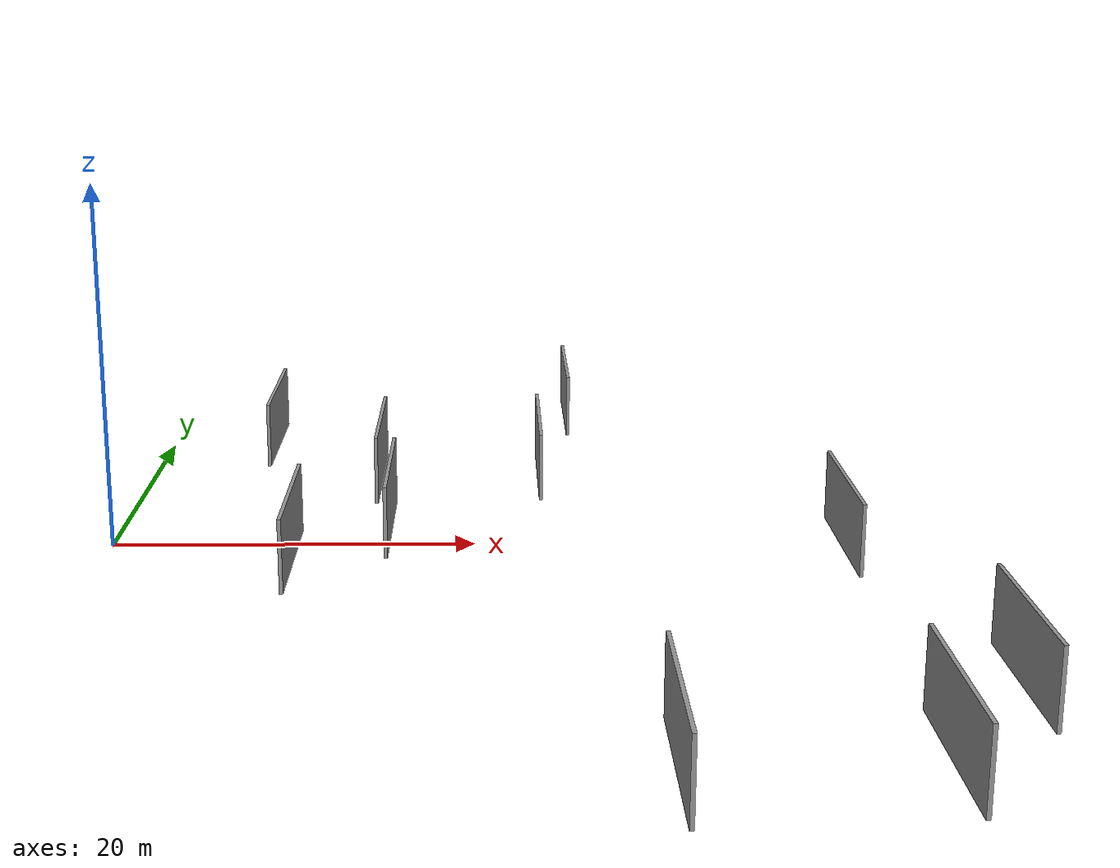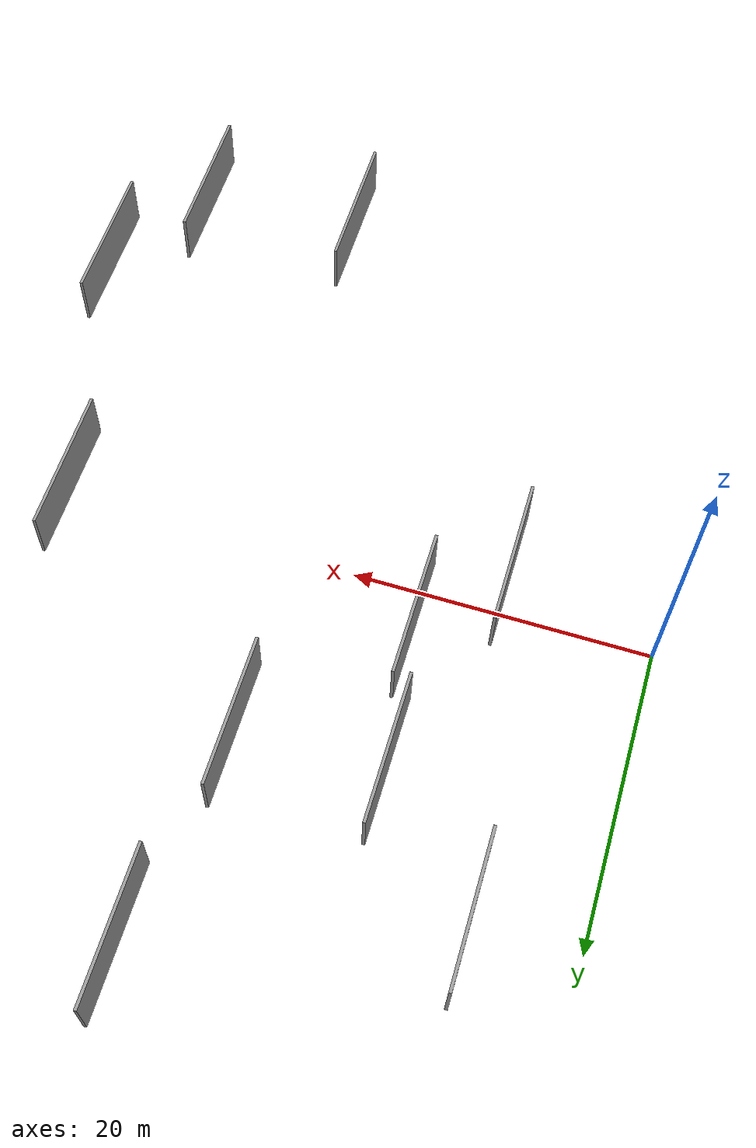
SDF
<sdf version="1.6">
 <world name="default">
  <scene>
   <sky><clouds><speed>12</speed></clouds></sky>
   <ambient>0.4 0.4 0.4 1</ambient>
   <background>0.7 0.7 0.7 1</background>
   <shadows>1</shadows>
  </scene>
  <gravity>0 0 -9.8066</gravity>
  <magnetic_field>6e-06 2.3e-05 -4.2e-05</magnetic_field>
  <physics default="0" name="default_physics" type="ode">
   <ode>
    <solver>
     <type>quick</type>
     <iters>10</iters>
     <sor>1.0</sor>
     <use_dynamic_moi_rescaling>0</use_dynamic_moi_rescaling>
    </solver>
    <constraints>
     <cfm>0</cfm>
     <erp>0.2</erp>
     <contact_max_correcting_vel>100</contact_max_correcting_vel>
     <contact_surface_layer>0.001</contact_surface_layer>
    </constraints>
   </ode>
   <max_step_size>0.004</max_step_size>
   <real_time_factor>1</real_time_factor>
   <real_time_update_rate>250</real_time_update_rate>
  </physics>
  <light name="sun" type="directional">
   <pose>0 0 10 0 0 0</pose>
   <diffuse>0.8 0.8 0.8 1</diffuse>
   <specular>0.2 0.2 0.2 1</specular>
   <attenuation>
    <range>1000</range>
    <constant>0.9</constant>
    <linear>0.01</linear>
    <quadratic>0.001</quadratic>
   </attenuation>
   <direction>-0.5 0.1 -0.9</direction>
  </light>
  <model name="grey_wall_1">
   <static>1</static>
   <pose>39.7344 -27.1558 0.0 0.000000 0.000000 1.570796</pose>
   <link name="link">
    <pose>0 0 2.00 0 0 0</pose>
    <collision name="collision"><geometry><box><size>10.00 0.2 4.00</size></box></geometry></collision>
    <visual name="visual">
     <cast_shadows>0</cast_shadows>
     <geometry><box><size>10.00 0.2 4.00</size></box></geometry>
     <material>
      <script>
       <uri>model://grey_wall/materials/scripts</uri>
       <uri>model://grey_wall/materials/textures</uri>
       <name>vrc/grey_wall</name>
      </script>
     </material>
    </visual>
   </link>
  </model>
  <model name="grey_wall_2">
   <static>1</static>
   <pose>14.1139 12.3904 0.0 0.000000 0.000000 1.570796</pose>
   <link name="link">
    <pose>0 0 2.00 0 0 0</pose>
    <collision name="collision"><geometry><box><size>10.00 0.2 4.00</size></box></geometry></collision>
    <visual name="visual">
     <cast_shadows>0</cast_shadows>
     <geometry><box><size>10.00 0.2 4.00</size></box></geometry>
     <material>
      <script>
       <uri>model://grey_wall/materials/scripts</uri>
       <uri>model://grey_wall/materials/textures</uri>
       <name>vrc/grey_wall</name>
      </script>
     </material>
    </visual>
   </link>
  </model>
  <model name="grey_wall_3">
   <static>1</static>
   <pose>6.8057 20.2723 0.0 0.000000 0.000000 1.570796</pose>
   <link name="link">
    <pose>0 0 2.00 0 0 0</pose>
    <collision name="collision"><geometry><box><size>10.00 0.2 4.00</size></box></geometry></collision>
    <visual name="visual">
     <cast_shadows>0</cast_shadows>
     <geometry><box><size>10.00 0.2 4.00</size></box></geometry>
     <material>
      <script>
       <uri>model://grey_wall/materials/scripts</uri>
       <uri>model://grey_wall/materials/textures</uri>
       <name>vrc/grey_wall</name>
      </script>
     </material>
    </visual>
   </link>
  </model>
  <model name="grey_wall_4">
   <static>1</static>
   <pose>10.1663 -2.7122 0.0 0.000000 0.000000 1.570796</pose>
   <link name="link">
    <pose>0 0 2.00 0 0 0</pose>
    <collision name="collision"><geometry><box><size>10.00 0.2 4.00</size></box></geometry></collision>
    <visual name="visual">
     <cast_shadows>0</cast_shadows>
     <geometry><box><size>10.00 0.2 4.00</size></box></geometry>
     <material>
      <script>
       <uri>model://grey_wall/materials/scripts</uri>
       <uri>model://grey_wall/materials/textures</uri>
       <name>vrc/grey_wall</name>
      </script>
     </material>
    </visual>
   </link>
  </model>
  <model name="grey_wall_5">
   <static>1</static>
   <pose>15.2024 2.6732 0.0 0.000000 0.000000 1.570796</pose>
   <link name="link">
    <pose>0 0 2.00 0 0 0</pose>
    <collision name="collision"><geometry><box><size>10.00 0.2 4.00</size></box></geometry></collision>
    <visual name="visual">
     <cast_shadows>0</cast_shadows>
     <geometry><box><size>10.00 0.2 4.00</size></box></geometry>
     <material>
      <script>
       <uri>model://grey_wall/materials/scripts</uri>
       <uri>model://grey_wall/materials/textures</uri>
       <name>vrc/grey_wall</name>
      </script>
     </material>
    </visual>
   </link>
  </model>
  <model name="grey_wall_6">
   <static>1</static>
   <pose>44.7719 -19.6676 0.0 0.000000 0.000000 1.570796</pose>
   <link name="link">
    <pose>0 0 2.00 0 0 0</pose>
    <collision name="collision"><geometry><box><size>10.00 0.2 4.00</size></box></geometry></collision>
    <visual name="visual">
     <cast_shadows>0</cast_shadows>
     <geometry><box><size>10.00 0.2 4.00</size></box></geometry>
     <material>
      <script>
       <uri>model://grey_wall/materials/scripts</uri>
       <uri>model://grey_wall/materials/textures</uri>
       <name>vrc/grey_wall</name>
      </script>
     </material>
    </visual>
   </link>
  </model>
  <model name="grey_wall_7">
   <static>1</static>
   <pose>40.3377 -0.6484 0.0 0.000000 0.000000 1.570796</pose>
   <link name="link">
    <pose>0 0 2.00 0 0 0</pose>
    <collision name="collision"><geometry><box><size>10.00 0.2 4.00</size></box></geometry></collision>
    <visual name="visual">
     <cast_shadows>0</cast_shadows>
     <geometry><box><size>10.00 0.2 4.00</size></box></geometry>
     <material>
      <script>
       <uri>model://grey_wall/materials/scripts</uri>
       <uri>model://grey_wall/materials/textures</uri>
       <name>vrc/grey_wall</name>
      </script>
     </material>
    </visual>
   </link>
  </model>
  <model name="grey_wall_8">
   <static>1</static>
   <pose>28.4090 -27.8102 0.0 0.000000 0.000000 1.570796</pose>
   <link name="link">
    <pose>0 0 2.00 0 0 0</pose>
    <collision name="collision"><geometry><box><size>10.00 0.2 4.00</size></box></geometry></collision>
    <visual name="visual">
     <cast_shadows>0</cast_shadows>
     <geometry><box><size>10.00 0.2 4.00</size></box></geometry>
     <material>
      <script>
       <uri>model://grey_wall/materials/scripts</uri>
       <uri>model://grey_wall/materials/textures</uri>
       <name>vrc/grey_wall</name>
      </script>
     </material>
    </visual>
   </link>
  </model>
  <model name="grey_wall_9">
   <static>1</static>
   <pose>23.8789 12.9611 0.0 0.000000 0.000000 1.570796</pose>
   <link name="link">
    <pose>0 0 2.00 0 0 0</pose>
    <collision name="collision"><geometry><box><size>10.00 0.2 4.00</size></box></geometry></collision>
    <visual name="visual">
     <cast_shadows>0</cast_shadows>
     <geometry><box><size>10.00 0.2 4.00</size></box></geometry>
     <material>
      <script>
       <uri>model://grey_wall/materials/scripts</uri>
       <uri>model://grey_wall/materials/textures</uri>
       <name>vrc/grey_wall</name>
      </script>
     </material>
    </visual>
   </link>
  </model>
  <model name="grey_wall_10">
   <static>1</static>
   <pose>26.0898 27.2447 0.0 0.000000 0.000000 1.570796</pose>
   <link name="link">
    <pose>0 0 2.00 0 0 0</pose>
    <collision name="collision"><geometry><box><size>10.00 0.2 4.00</size></box></geometry></collision>
    <visual name="visual">
     <cast_shadows>0</cast_shadows>
     <geometry><box><size>10.00 0.2 4.00</size></box></geometry>
     <material>
      <script>
       <uri>model://grey_wall/materials/scripts</uri>
       <uri>model://grey_wall/materials/textures</uri>
       <name>vrc/grey_wall</name>
      </script>
     </material>
    </visual>
   </link>
  </model>
 </world>
</sdf>
